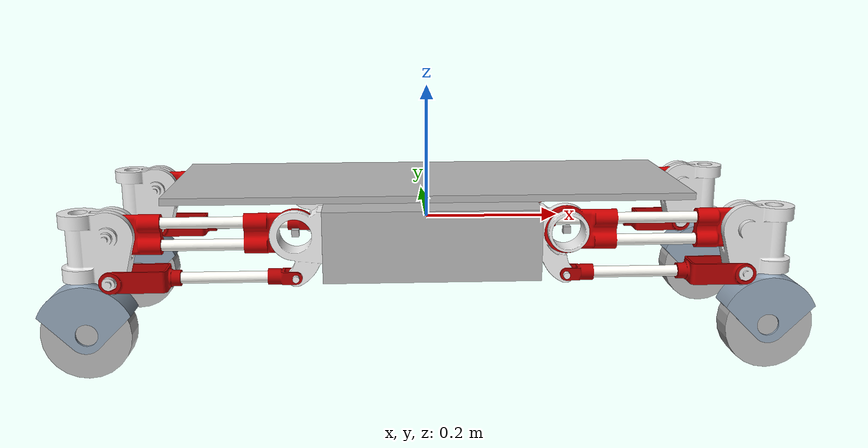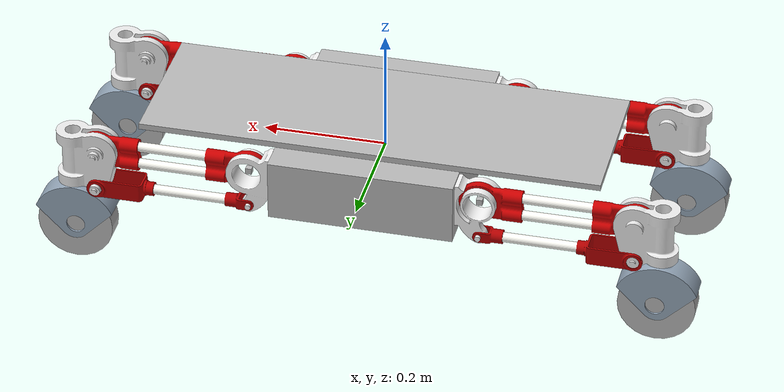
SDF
<sdf version='1.7'>
  <model name='pandora'>
    <joint name='world__base_link' type='fixed'>
      <pose relative_to='__model__'>0 0 0 0 -0 0</pose>
      <parent>world</parent>
      <child>base_link</child>
    </joint>
    <link name='base_link'>
      <pose relative_to='world__base_link'>0 0 0 0 -0 0</pose>
      <inertial>
        <pose>0 0 0.006195 0 -0 0</pose>
        <mass>39.841</mass>
        <inertia>
          <ixx>0.480025</ixx>
          <ixy>0</ixy>
          <ixz>5.15816e-19</ixz>
          <iyy>0.675118</iyy>
          <iyz>-8.67362e-19</iyz>
          <izz>1.06847</izz>
        </inertia>
      </inertial>
      <collision name='base_link_collision'>
        <pose>0 0 0 0 -0 0</pose>
        <geometry>
          <box>
            <size>0.3 0.35 0.1</size>
          </box>
        </geometry>
      </collision>
      <collision name='base_link_fixed_joint_lump__frame_1_collision_1'>
        <pose>0.1875 -0.146719 -0.006 1.5708 -0 0</pose>
        <geometry>
          <box>
            <size>0.075 0.10625 0.016563</size>
          </box>
        </geometry>
      </collision>
      <collision name='base_link_fixed_joint_lump__pin_1_collision_2'>
        <pose>0.1875 -0.146719 0.015125 1.5708 -0 0</pose>
        <geometry>
          <box>
            <size>0.01 0.01 0.01</size>
          </box>
        </geometry>
      </collision>
      <collision name='base_link_fixed_joint_lump__frame_2_collision_3'>
        <pose>0.1875 0.146719 -0.006 1.5708 -0 0</pose>
        <geometry>
          <box>
            <size>0.075 0.10625 0.016563</size>
          </box>
        </geometry>
      </collision>
      <collision name='base_link_fixed_joint_lump__pin_2_collision_4'>
        <pose>0.1875 0.146719 0.015125 1.5708 -0 0</pose>
        <geometry>
          <box>
            <size>0.01 0.01 0.01</size>
          </box>
        </geometry>
      </collision>
      <collision name='base_link_fixed_joint_lump__frame_3_collision_5'>
        <pose>-0.1875 0.146719 -0.006 1.5708 0 3.14159</pose>
        <geometry>
          <box>
            <size>0.075 0.10625 0.016563</size>
          </box>
        </geometry>
      </collision>
      <collision name='base_link_fixed_joint_lump__pin_3_collision_6'>
        <pose>-0.1875 0.146719 0.015125 1.5708 0 3.14159</pose>
        <geometry>
          <box>
            <size>0.01 0.01 0.01</size>
          </box>
        </geometry>
      </collision>
      <collision name='base_link_fixed_joint_lump__frame_4_collision_7'>
        <pose>-0.1875 -0.146719 -0.006 1.5708 0 3.14159</pose>
        <geometry>
          <box>
            <size>0.075 0.10625 0.016563</size>
          </box>
        </geometry>
      </collision>
      <collision name='base_link_fixed_joint_lump__pin_4_collision_8'>
        <pose>-0.1875 -0.146719 0.015125 1.5708 0 3.14159</pose>
        <geometry>
          <box>
            <size>0.01 0.01 0.01</size>
          </box>
        </geometry>
      </collision>
      <collision name='base_link_fixed_joint_lump__base_collision_9'>
        <pose>0 0 0.055 0 -0 0</pose>
        <geometry>
          <box>
            <size>0.75 0.25 0.01</size>
          </box>
        </geometry>
      </collision>
      <collision name='base_link_fixed_joint_lump__imu_link_collision_10'>
        <pose>0 0 0 0 -0 0</pose>
        <geometry>
          <box>
            <size>0.001 0.001 0.001</size>
          </box>
        </geometry>
        <surface>
          <contact>
            <ode/>
          </contact>
          <friction>
            <ode/>
          </friction>
        </surface>
      </collision>
      <visual name='base_link_visual'>
        <pose>0 0 0 0 -0 0</pose>
        <geometry>
          <box>
            <size>0.3 0.35 0.1</size>
          </box>
        </geometry>
      </visual>
      <visual name='base_link_fixed_joint_lump__frame_1_visual_1'>
        <pose>0.1875 -0.146719 -0.006 -1.5708 -0 3.14159</pose>
        <geometry>
          <mesh>
            <scale>0.625 0.625 0.625</scale>
            <uri>model://pandora_description/meshes/frame.dae</uri>
          </mesh>
        </geometry>
      </visual>
      <visual name='base_link_fixed_joint_lump__pin_1_visual_2'>
        <pose>0.1875 -0.146719 0.015125 1.5708 -0 0</pose>
        <geometry>
          <box>
            <size>0.01 0.01 0.01</size>
          </box>
        </geometry>
      </visual>
      <visual name='base_link_fixed_joint_lump__frame_2_visual_3'>
        <pose>0.1875 0.146719 -0.006 -1.5708 -0 3.14159</pose>
        <geometry>
          <mesh>
            <scale>0.625 0.625 0.625</scale>
            <uri>model://pandora_description/meshes/frame.dae</uri>
          </mesh>
        </geometry>
      </visual>
      <visual name='base_link_fixed_joint_lump__pin_2_visual_4'>
        <pose>0.1875 0.146719 0.015125 1.5708 -0 0</pose>
        <geometry>
          <box>
            <size>0.01 0.01 0.01</size>
          </box>
        </geometry>
      </visual>
      <visual name='base_link_fixed_joint_lump__frame_3_visual_5'>
        <pose>-0.1875 0.146719 -0.006 -1.5708 -0 0</pose>
        <geometry>
          <mesh>
            <scale>0.625 0.625 0.625</scale>
            <uri>model://pandora_description/meshes/frame.dae</uri>
          </mesh>
        </geometry>
      </visual>
      <visual name='base_link_fixed_joint_lump__pin_3_visual_6'>
        <pose>-0.1875 0.146719 0.015125 1.5708 0 3.14159</pose>
        <geometry>
          <box>
            <size>0.01 0.01 0.01</size>
          </box>
        </geometry>
      </visual>
      <visual name='base_link_fixed_joint_lump__frame_4_visual_7'>
        <pose>-0.1875 -0.146719 -0.006 -1.5708 -0 0</pose>
        <geometry>
          <mesh>
            <scale>0.625 0.625 0.625</scale>
            <uri>model://pandora_description/meshes/frame.dae</uri>
          </mesh>
        </geometry>
      </visual>
      <visual name='base_link_fixed_joint_lump__pin_4_visual_8'>
        <pose>-0.1875 -0.146719 0.015125 1.5708 0 3.14159</pose>
        <geometry>
          <box>
            <size>0.01 0.01 0.01</size>
          </box>
        </geometry>
      </visual>
      <visual name='base_link_fixed_joint_lump__base_visual_9'>
        <pose>0 0 0.055 0 -0 0</pose>
        <geometry>
          <box>
            <size>0.75 0.25 0.01</size>
          </box>
        </geometry>
      </visual>
      <visual name='base_link_fixed_joint_lump__imu_link_visual_10'>
        <pose>0 0 0 0 -0 0</pose>
        <geometry>
          <box>
            <size>0.001 0.001 0.001</size>
          </box>
        </geometry>
      </visual>
      <gravity>1</gravity>
      <sensor name='imu_sensor' type='imu'>
        <always_on>1</always_on>
        <update_rate>25</update_rate>
        <visualize>1</visualize>
        <topic>__default_topic__</topic>
        <plugin name='imu_plugin' filename='libgazebo_ros_imu_sensor.so'>
          <topicName>imu</topicName>
          <bodyName>imu_link</bodyName>
          <updateRateHZ>25.0</updateRateHZ>
          <gaussianNoise>0.0</gaussianNoise>
          <xyzOffset>0 0 0</xyzOffset>
          <rpyOffset>0 0 0</rpyOffset>
          <frameName>imu_link</frameName>
          <initialOrientationAsReference>0</initialOrientationAsReference>
        </plugin>
        <pose>0 0 0 0 -0 0</pose>
      </sensor>
    </link>
    <joint name='pin__crank_1' type='revolute'>
      <pose relative_to='base_link'>0.1875 -0.146719 0.015125 1.5708 -0 0</pose>
      <parent>base_link</parent>
      <child>crank_1</child>
      <axis>
        <xyz>0 0 1</xyz>
        <limit>
          <lower>-0.785398</lower>
          <upper>0.785398</upper>
          <effort>1000</effort>
          <velocity>0.5</velocity>
        </limit>
        <dynamics>
          <spring_reference>0</spring_reference>
          <spring_stiffness>0</spring_stiffness>
        </dynamics>
      </axis>
    </joint>
    <link name='crank_1'>
      <pose relative_to='pin__crank_1'>0 0 0 0 -0 0</pose>
      <inertial>
        <pose>0.125 0 0 0 -0 0</pose>
        <mass>0.072</mass>
        <inertia>
          <ixx>1.23779e-05</ixx>
          <ixy>0</ixy>
          <ixz>0</ixz>
          <iyy>0.000475172</iyy>
          <iyz>0</iyz>
          <izz>0.000486424</izz>
        </inertia>
      </inertial>
      <collision name='crank_1_collision'>
        <pose>0.125 0 0 0 -0 0</pose>
        <geometry>
          <box>
            <size>0.28125 0.044375 0.009688</size>
          </box>
        </geometry>
      </collision>
      <visual name='crank_1_visual'>
        <pose>0.016 0 0 0 -0 0</pose>
        <geometry>
          <mesh>
            <scale>0.625 0.625 0.625</scale>
            <uri>model://pandora_description/meshes/crank.dae</uri>
          </mesh>
        </geometry>
      </visual>
    </link>
    <joint name='crank__coupler_1' type='revolute'>
      <pose relative_to='crank_1'>0.25 0 -0.003125 0 0 -1.5708</pose>
      <parent>crank_1</parent>
      <child>coupler_1</child>
      <axis>
        <xyz>0 0 1</xyz>
        <limit>
          <lower>-3.14159</lower>
          <upper>3.14159</upper>
          <effort>1000</effort>
          <velocity>0.5</velocity>
        </limit>
        <dynamics>
          <spring_reference>0</spring_reference>
          <spring_stiffness>0</spring_stiffness>
        </dynamics>
      </axis>
    </joint>
    <link name='coupler_1'>
      <pose relative_to='crank__coupler_1'>0 0 0 0 -0 0</pose>
      <inertial>
        <pose>0.102822 0.029821 0.002429 0 -0 0</pose>
        <mass>0.62875</mass>
        <inertia>
          <ixx>0.000670227</ixx>
          <ixy>-0.00031806</ixy>
          <ixz>-0.000105089</ixz>
          <iyy>0.00158952</iyy>
          <iyz>-3.81483e-05</iyz>
          <izz>0.00219655</izz>
        </inertia>
      </inertial>
      <collision name='coupler_1_collision'>
        <pose>0.053125 0 -0.003531 0 -0 0</pose>
        <geometry>
          <box>
            <size>0.10625 0.08514 0.007063</size>
          </box>
        </geometry>
      </collision>
      <collision name='coupler_1_fixed_joint_lump__fork_1_collision_1'>
        <pose>0.062125 0.04 0 0 -1.5708 0</pose>
        <geometry>
          <cylinder>
            <length>0.014644</length>
            <radius>0.01875</radius>
          </cylinder>
        </geometry>
      </collision>
      <collision name='coupler_1_fixed_joint_lump__wheel_1_collision_2'>
        <pose>0.139625 0.04 0.006 0 -0 0</pose>
        <geometry>
          <cylinder>
            <length>0.03625</length>
            <radius>0.0625</radius>
          </cylinder>
        </geometry>
        <surface>
          <friction>
            <ode>
              <mu>1</mu>
              <mu2>1</mu2>
            </ode>
            <bullet>
              <friction>0.5</friction>
              <friction2>0.5</friction2>
            </bullet>
          </friction>
          <contact>
            <ode>
              <soft_erp>0.5</soft_erp>
              <max_vel>0.0001</max_vel>
              <min_depth>0.005</min_depth>
              <kp>2.1e+15</kp>
              <kd>1</kd>
            </ode>
            <bullet>
              <soft_cfm>0.007</soft_cfm>
              <soft_erp>0.25</soft_erp>
              <kp>1e+06</kp>
              <kd>5</kd>
              <split_impulse>1</split_impulse>
              <split_impulse_penetration_threshold>-0.01</split_impulse_penetration_threshold>
            </bullet>
          </contact>
        </surface>
      </collision>
      <visual name='coupler_1_visual'>
        <pose>0.031125 -0.0025 0.003531 0 0 -1.5708</pose>
        <geometry>
          <mesh>
            <scale>0.625 0.625 0.625</scale>
            <uri>model://pandora_description/meshes/coupler.dae</uri>
          </mesh>
        </geometry>
      </visual>
      <visual name='coupler_1_fixed_joint_lump__fork_1_visual_1'>
        <pose>0.137125 0.04 0.005 -3.14159 -0 1.5708</pose>
        <geometry>
          <mesh>
            <scale>0.625 0.625 0.625</scale>
            <uri>model://pandora_description/meshes/fork.dae</uri>
          </mesh>
        </geometry>
      </visual>
      <visual name='coupler_1_fixed_joint_lump__wheel_1_visual_2'>
        <pose>0.139625 0.04 0.006 0 -0 0</pose>
        <geometry>
          <cylinder>
            <length>0.03625</length>
            <radius>0.0625</radius>
          </cylinder>
        </geometry>
      </visual>
      <sensor name='wheel_1_contact_sensor' type='contact'>
        <always_on>1</always_on>
        <update_rate>25</update_rate>
        <contact>
          <collision>fork_1_collision_wheel_1</collision>
          <topic>__default_topic__</topic>
        </contact>
        <plugin name='wheel_1_bumper' filename='libgazebo_ros_bumper.so'>
          <bumperTopicName>pandora/contacts_1</bumperTopicName>
          <frameName>wheel_1</frameName>
        </plugin>
        <pose>0.139625 0.04 0.006 0 -0 0</pose>
      </sensor>
    </link>
    <joint name='frame__rocker_1' type='revolute'>
      <pose relative_to='base_link'>0.1875 -0.146719 -0.047125 1.5708 -0 0</pose>
      <parent>base_link</parent>
      <child>rocker_1</child>
      <axis>
        <xyz>0 0 1</xyz>
        <limit>
          <lower>-3.14159</lower>
          <upper>3.14159</upper>
          <effort>1000</effort>
          <velocity>0.5</velocity>
        </limit>
        <dynamics>
          <spring_reference>0</spring_reference>
          <spring_stiffness>0</spring_stiffness>
        </dynamics>
      </axis>
    </joint>
    <link name='rocker_1'>
      <pose relative_to='frame__rocker_1'>0 0 0 0 -0 0</pose>
      <inertial>
        <pose>0.125 0 0 0 -0 0</pose>
        <mass>0.05</mass>
        <inertia>
          <ixx>5.53792e-07</ixx>
          <ixy>0</ixy>
          <ixz>0</ixz>
          <iyy>0.000315267</iyy>
          <iyz>0</iyz>
          <izz>0.000315495</izz>
        </inertia>
      </inertial>
      <collision name='rocker_1_collision'>
        <pose>0.125 0 0 0 -0 0</pose>
        <geometry>
          <box>
            <size>0.275 0.009688 0.00625</size>
          </box>
        </geometry>
      </collision>
      <visual name='rocker_1_visual'>
        <pose>0.0955 0 0 0 -0 3.14159</pose>
        <geometry>
          <mesh>
            <scale>0.625 0.625 0.625</scale>
            <uri>model://pandora_description/meshes/rocker.dae</uri>
          </mesh>
        </geometry>
      </visual>
    </link>
    <joint name='pin__crank_2' type='revolute'>
      <pose relative_to='base_link'>0.1875 0.146719 0.015125 1.5708 -0 0</pose>
      <parent>base_link</parent>
      <child>crank_2</child>
      <axis>
        <xyz>0 0 1</xyz>
        <limit>
          <lower>-0.785398</lower>
          <upper>0.785398</upper>
          <effort>1000</effort>
          <velocity>0.5</velocity>
        </limit>
        <dynamics>
          <spring_reference>0</spring_reference>
          <spring_stiffness>0</spring_stiffness>
        </dynamics>
      </axis>
    </joint>
    <link name='crank_2'>
      <pose relative_to='pin__crank_2'>0 0 0 0 -0 0</pose>
      <inertial>
        <pose>0.125 0 0 0 -0 0</pose>
        <mass>0.072</mass>
        <inertia>
          <ixx>1.23779e-05</ixx>
          <ixy>0</ixy>
          <ixz>0</ixz>
          <iyy>0.000475172</iyy>
          <iyz>0</iyz>
          <izz>0.000486424</izz>
        </inertia>
      </inertial>
      <collision name='crank_2_collision'>
        <pose>0.125 0 0 0 -0 0</pose>
        <geometry>
          <box>
            <size>0.28125 0.044375 0.009688</size>
          </box>
        </geometry>
      </collision>
      <visual name='crank_2_visual'>
        <pose>0.016 0 0 0 -0 0</pose>
        <geometry>
          <mesh>
            <scale>0.625 0.625 0.625</scale>
            <uri>model://pandora_description/meshes/crank.dae</uri>
          </mesh>
        </geometry>
      </visual>
    </link>
    <joint name='crank__coupler_2' type='revolute'>
      <pose relative_to='crank_2'>0.25 0 -0.003125 0 0 -1.5708</pose>
      <parent>crank_2</parent>
      <child>coupler_2</child>
      <axis>
        <xyz>0 0 1</xyz>
        <limit>
          <lower>-3.14159</lower>
          <upper>3.14159</upper>
          <effort>1000</effort>
          <velocity>0.5</velocity>
        </limit>
        <dynamics>
          <spring_reference>0</spring_reference>
          <spring_stiffness>0</spring_stiffness>
        </dynamics>
      </axis>
    </joint>
    <link name='coupler_2'>
      <pose relative_to='crank__coupler_2'>0 0 0 0 -0 0</pose>
      <inertial>
        <pose>0.102822 0.029821 0.002429 0 -0 0</pose>
        <mass>0.62875</mass>
        <inertia>
          <ixx>0.000670227</ixx>
          <ixy>-0.00031806</ixy>
          <ixz>-0.000105089</ixz>
          <iyy>0.00158952</iyy>
          <iyz>-3.81483e-05</iyz>
          <izz>0.00219655</izz>
        </inertia>
      </inertial>
      <collision name='coupler_2_collision'>
        <pose>0.053125 0 -0.003531 0 -0 0</pose>
        <geometry>
          <box>
            <size>0.10625 0.08514 0.007063</size>
          </box>
        </geometry>
      </collision>
      <collision name='coupler_2_fixed_joint_lump__fork_2_collision_1'>
        <pose>0.062125 0.04 0 0 -1.5708 0</pose>
        <geometry>
          <cylinder>
            <length>0.014644</length>
            <radius>0.01875</radius>
          </cylinder>
        </geometry>
      </collision>
      <collision name='coupler_2_fixed_joint_lump__wheel_2_collision_2'>
        <pose>0.139625 0.04 0.006 0 -0 0</pose>
        <geometry>
          <cylinder>
            <length>0.03625</length>
            <radius>0.0625</radius>
          </cylinder>
        </geometry>
        <surface>
          <friction>
            <ode>
              <mu>1</mu>
              <mu2>1</mu2>
            </ode>
            <bullet>
              <friction>0.5</friction>
              <friction2>0.5</friction2>
            </bullet>
          </friction>
          <contact>
            <ode>
              <soft_erp>0.5</soft_erp>
              <max_vel>0.0001</max_vel>
              <min_depth>0.005</min_depth>
              <kp>2.1e+15</kp>
              <kd>1</kd>
            </ode>
            <bullet>
              <soft_cfm>0.007</soft_cfm>
              <soft_erp>0.25</soft_erp>
              <kp>1e+06</kp>
              <kd>5</kd>
              <split_impulse>1</split_impulse>
              <split_impulse_penetration_threshold>-0.01</split_impulse_penetration_threshold>
            </bullet>
          </contact>
        </surface>
      </collision>
      <visual name='coupler_2_visual'>
        <pose>0.031125 -0.0025 0.003531 0 0 -1.5708</pose>
        <geometry>
          <mesh>
            <scale>0.625 0.625 0.625</scale>
            <uri>model://pandora_description/meshes/coupler.dae</uri>
          </mesh>
        </geometry>
      </visual>
      <visual name='coupler_2_fixed_joint_lump__fork_2_visual_1'>
        <pose>0.137125 0.04 0.005 -3.14159 -0 1.5708</pose>
        <geometry>
          <mesh>
            <scale>0.625 0.625 0.625</scale>
            <uri>model://pandora_description/meshes/fork.dae</uri>
          </mesh>
        </geometry>
      </visual>
      <visual name='coupler_2_fixed_joint_lump__wheel_2_visual_2'>
        <pose>0.139625 0.04 0.006 0 -0 0</pose>
        <geometry>
          <cylinder>
            <length>0.03625</length>
            <radius>0.0625</radius>
          </cylinder>
        </geometry>
      </visual>
      <sensor name='wheel_2_contact_sensor' type='contact'>
        <always_on>1</always_on>
        <update_rate>25</update_rate>
        <contact>
          <collision>fork_2_collision_wheel_2</collision>
          <topic>__default_topic__</topic>
        </contact>
        <plugin name='wheel_2_bumper' filename='libgazebo_ros_bumper.so'>
          <bumperTopicName>pandora/contacts_2</bumperTopicName>
          <frameName>wheel_2</frameName>
        </plugin>
        <pose>0.139625 0.04 0.006 0 -0 0</pose>
      </sensor>
    </link>
    <joint name='frame__rocker_2' type='revolute'>
      <pose relative_to='base_link'>0.1875 0.146719 -0.047125 1.5708 -0 0</pose>
      <parent>base_link</parent>
      <child>rocker_2</child>
      <axis>
        <xyz>0 0 1</xyz>
        <limit>
          <lower>-3.14159</lower>
          <upper>3.14159</upper>
          <effort>1000</effort>
          <velocity>0.5</velocity>
        </limit>
        <dynamics>
          <spring_reference>0</spring_reference>
          <spring_stiffness>0</spring_stiffness>
        </dynamics>
      </axis>
    </joint>
    <link name='rocker_2'>
      <pose relative_to='frame__rocker_2'>0 0 0 0 -0 0</pose>
      <inertial>
        <pose>0.125 0 0 0 -0 0</pose>
        <mass>0.05</mass>
        <inertia>
          <ixx>5.53792e-07</ixx>
          <ixy>0</ixy>
          <ixz>0</ixz>
          <iyy>0.000315267</iyy>
          <iyz>0</iyz>
          <izz>0.000315495</izz>
        </inertia>
      </inertial>
      <collision name='rocker_2_collision'>
        <pose>0.125 0 0 0 -0 0</pose>
        <geometry>
          <box>
            <size>0.275 0.009688 0.00625</size>
          </box>
        </geometry>
      </collision>
      <visual name='rocker_2_visual'>
        <pose>0.0955 0 0 0 -0 3.14159</pose>
        <geometry>
          <mesh>
            <scale>0.625 0.625 0.625</scale>
            <uri>model://pandora_description/meshes/rocker.dae</uri>
          </mesh>
        </geometry>
      </visual>
    </link>
    <joint name='pin__crank_3' type='revolute'>
      <pose relative_to='base_link'>-0.1875 0.146719 0.015125 1.5708 0 3.14159</pose>
      <parent>base_link</parent>
      <child>crank_3</child>
      <axis>
        <xyz>0 0 1</xyz>
        <limit>
          <lower>-0.785398</lower>
          <upper>0.785398</upper>
          <effort>1000</effort>
          <velocity>0.5</velocity>
        </limit>
        <dynamics>
          <spring_reference>0</spring_reference>
          <spring_stiffness>0</spring_stiffness>
        </dynamics>
      </axis>
    </joint>
    <link name='crank_3'>
      <pose relative_to='pin__crank_3'>0 0 0 0 -0 0</pose>
      <inertial>
        <pose>0.125 0 0 0 -0 0</pose>
        <mass>0.072</mass>
        <inertia>
          <ixx>1.23779e-05</ixx>
          <ixy>0</ixy>
          <ixz>0</ixz>
          <iyy>0.000475172</iyy>
          <iyz>0</iyz>
          <izz>0.000486424</izz>
        </inertia>
      </inertial>
      <collision name='crank_3_collision'>
        <pose>0.125 0 0 0 -0 0</pose>
        <geometry>
          <box>
            <size>0.28125 0.044375 0.009688</size>
          </box>
        </geometry>
      </collision>
      <visual name='crank_3_visual'>
        <pose>0.016 0 0 0 -0 0</pose>
        <geometry>
          <mesh>
            <scale>0.625 0.625 0.625</scale>
            <uri>model://pandora_description/meshes/crank.dae</uri>
          </mesh>
        </geometry>
      </visual>
    </link>
    <joint name='crank__coupler_3' type='revolute'>
      <pose relative_to='crank_3'>0.25 0 -0.003125 0 0 -1.5708</pose>
      <parent>crank_3</parent>
      <child>coupler_3</child>
      <axis>
        <xyz>0 0 1</xyz>
        <limit>
          <lower>-3.14159</lower>
          <upper>3.14159</upper>
          <effort>1000</effort>
          <velocity>0.5</velocity>
        </limit>
        <dynamics>
          <spring_reference>0</spring_reference>
          <spring_stiffness>0</spring_stiffness>
        </dynamics>
      </axis>
    </joint>
    <link name='coupler_3'>
      <pose relative_to='crank__coupler_3'>0 0 0 0 -0 0</pose>
      <inertial>
        <pose>0.102822 0.029821 0.002429 0 -0 0</pose>
        <mass>0.62875</mass>
        <inertia>
          <ixx>0.000670227</ixx>
          <ixy>-0.00031806</ixy>
          <ixz>-0.000105089</ixz>
          <iyy>0.00158952</iyy>
          <iyz>-3.81483e-05</iyz>
          <izz>0.00219655</izz>
        </inertia>
      </inertial>
      <collision name='coupler_3_collision'>
        <pose>0.053125 0 -0.003531 0 -0 0</pose>
        <geometry>
          <box>
            <size>0.10625 0.08514 0.007063</size>
          </box>
        </geometry>
      </collision>
      <collision name='coupler_3_fixed_joint_lump__fork_3_collision_1'>
        <pose>0.062125 0.04 0 0 -1.5708 0</pose>
        <geometry>
          <cylinder>
            <length>0.014644</length>
            <radius>0.01875</radius>
          </cylinder>
        </geometry>
      </collision>
      <collision name='coupler_3_fixed_joint_lump__wheel_3_collision_2'>
        <pose>0.139625 0.04 0.006 -3.14159 0 0</pose>
        <geometry>
          <cylinder>
            <length>0.03625</length>
            <radius>0.0625</radius>
          </cylinder>
        </geometry>
        <surface>
          <friction>
            <ode>
              <mu>1</mu>
              <mu2>1</mu2>
            </ode>
            <bullet>
              <friction>0.5</friction>
              <friction2>0.5</friction2>
            </bullet>
          </friction>
          <contact>
            <ode>
              <soft_erp>0.5</soft_erp>
              <max_vel>0.0001</max_vel>
              <min_depth>0.005</min_depth>
              <kp>2.1e+15</kp>
              <kd>1</kd>
            </ode>
            <bullet>
              <soft_cfm>0.007</soft_cfm>
              <soft_erp>0.25</soft_erp>
              <kp>1e+06</kp>
              <kd>5</kd>
              <split_impulse>1</split_impulse>
              <split_impulse_penetration_threshold>-0.01</split_impulse_penetration_threshold>
            </bullet>
          </contact>
        </surface>
      </collision>
      <visual name='coupler_3_visual'>
        <pose>0.031125 -0.0025 0.003531 0 0 -1.5708</pose>
        <geometry>
          <mesh>
            <scale>0.625 0.625 0.625</scale>
            <uri>model://pandora_description/meshes/coupler.dae</uri>
          </mesh>
        </geometry>
      </visual>
      <visual name='coupler_3_fixed_joint_lump__fork_3_visual_1'>
        <pose>0.137125 0.04 0.005 -3.14159 -0 1.5708</pose>
        <geometry>
          <mesh>
            <scale>0.625 0.625 0.625</scale>
            <uri>model://pandora_description/meshes/fork.dae</uri>
          </mesh>
        </geometry>
      </visual>
      <visual name='coupler_3_fixed_joint_lump__wheel_3_visual_2'>
        <pose>0.139625 0.04 0.006 -3.14159 0 0</pose>
        <geometry>
          <cylinder>
            <length>0.03625</length>
            <radius>0.0625</radius>
          </cylinder>
        </geometry>
      </visual>
      <sensor name='wheel_3_contact_sensor' type='contact'>
        <always_on>1</always_on>
        <update_rate>25</update_rate>
        <contact>
          <collision>fork_3_collision_wheel_3</collision>
          <topic>__default_topic__</topic>
        </contact>
        <plugin name='wheel_3_bumper' filename='libgazebo_ros_bumper.so'>
          <bumperTopicName>pandora/contacts_3</bumperTopicName>
          <frameName>wheel_3</frameName>
        </plugin>
        <pose>0.139625 0.04 0.006 -3.14159 0 0</pose>
      </sensor>
    </link>
    <joint name='frame__rocker_3' type='revolute'>
      <pose relative_to='base_link'>-0.1875 0.146719 -0.047125 1.5708 0 3.14159</pose>
      <parent>base_link</parent>
      <child>rocker_3</child>
      <axis>
        <xyz>0 0 1</xyz>
        <limit>
          <lower>-3.14159</lower>
          <upper>3.14159</upper>
          <effort>1000</effort>
          <velocity>0.5</velocity>
        </limit>
        <dynamics>
          <spring_reference>0</spring_reference>
          <spring_stiffness>0</spring_stiffness>
        </dynamics>
      </axis>
    </joint>
    <link name='rocker_3'>
      <pose relative_to='frame__rocker_3'>0 0 0 0 -0 0</pose>
      <inertial>
        <pose>0.125 0 0 0 -0 0</pose>
        <mass>0.05</mass>
        <inertia>
          <ixx>5.53792e-07</ixx>
          <ixy>0</ixy>
          <ixz>0</ixz>
          <iyy>0.000315267</iyy>
          <iyz>0</iyz>
          <izz>0.000315495</izz>
        </inertia>
      </inertial>
      <collision name='rocker_3_collision'>
        <pose>0.125 0 0 0 -0 0</pose>
        <geometry>
          <box>
            <size>0.275 0.009688 0.00625</size>
          </box>
        </geometry>
      </collision>
      <visual name='rocker_3_visual'>
        <pose>0.0955 0 0 0 -0 3.14159</pose>
        <geometry>
          <mesh>
            <scale>0.625 0.625 0.625</scale>
            <uri>model://pandora_description/meshes/rocker.dae</uri>
          </mesh>
        </geometry>
      </visual>
    </link>
    <joint name='pin__crank_4' type='revolute'>
      <pose relative_to='base_link'>-0.1875 -0.146719 0.015125 1.5708 0 3.14159</pose>
      <parent>base_link</parent>
      <child>crank_4</child>
      <axis>
        <xyz>0 0 1</xyz>
        <limit>
          <lower>-0.785398</lower>
          <upper>0.785398</upper>
          <effort>1000</effort>
          <velocity>0.5</velocity>
        </limit>
        <dynamics>
          <spring_reference>0</spring_reference>
          <spring_stiffness>0</spring_stiffness>
        </dynamics>
      </axis>
    </joint>
    <link name='crank_4'>
      <pose relative_to='pin__crank_4'>0 0 0 0 -0 0</pose>
      <inertial>
        <pose>0.125 0 0 0 -0 0</pose>
        <mass>0.072</mass>
        <inertia>
          <ixx>1.23779e-05</ixx>
          <ixy>0</ixy>
          <ixz>0</ixz>
          <iyy>0.000475172</iyy>
          <iyz>0</iyz>
          <izz>0.000486424</izz>
        </inertia>
      </inertial>
      <collision name='crank_4_collision'>
        <pose>0.125 0 0 0 -0 0</pose>
        <geometry>
          <box>
            <size>0.28125 0.044375 0.009688</size>
          </box>
        </geometry>
      </collision>
      <visual name='crank_4_visual'>
        <pose>0.016 0 0 0 -0 0</pose>
        <geometry>
          <mesh>
            <scale>0.625 0.625 0.625</scale>
            <uri>model://pandora_description/meshes/crank.dae</uri>
          </mesh>
        </geometry>
      </visual>
    </link>
    <joint name='crank__coupler_4' type='revolute'>
      <pose relative_to='crank_4'>0.25 0 -0.003125 0 0 -1.5708</pose>
      <parent>crank_4</parent>
      <child>coupler_4</child>
      <axis>
        <xyz>0 0 1</xyz>
        <limit>
          <lower>-3.14159</lower>
          <upper>3.14159</upper>
          <effort>1000</effort>
          <velocity>0.5</velocity>
        </limit>
        <dynamics>
          <spring_reference>0</spring_reference>
          <spring_stiffness>0</spring_stiffness>
        </dynamics>
      </axis>
    </joint>
    <link name='coupler_4'>
      <pose relative_to='crank__coupler_4'>0 0 0 0 -0 0</pose>
      <inertial>
        <pose>0.102822 0.029821 0.002429 0 -0 0</pose>
        <mass>0.62875</mass>
        <inertia>
          <ixx>0.000670227</ixx>
          <ixy>-0.00031806</ixy>
          <ixz>-0.000105089</ixz>
          <iyy>0.00158952</iyy>
          <iyz>-3.81483e-05</iyz>
          <izz>0.00219655</izz>
        </inertia>
      </inertial>
      <collision name='coupler_4_collision'>
        <pose>0.053125 0 -0.003531 0 -0 0</pose>
        <geometry>
          <box>
            <size>0.10625 0.08514 0.007063</size>
          </box>
        </geometry>
      </collision>
      <collision name='coupler_4_fixed_joint_lump__fork_4_collision_1'>
        <pose>0.062125 0.04 0 0 -1.5708 0</pose>
        <geometry>
          <cylinder>
            <length>0.014644</length>
            <radius>0.01875</radius>
          </cylinder>
        </geometry>
      </collision>
      <collision name='coupler_4_fixed_joint_lump__wheel_4_collision_2'>
        <pose>0.139625 0.04 0.006 -3.14159 0 0</pose>
        <geometry>
          <cylinder>
            <length>0.03625</length>
            <radius>0.0625</radius>
          </cylinder>
        </geometry>
        <surface>
          <friction>
            <ode>
              <mu>1</mu>
              <mu2>1</mu2>
            </ode>
            <bullet>
              <friction>0.5</friction>
              <friction2>0.5</friction2>
            </bullet>
          </friction>
          <contact>
            <ode>
              <soft_erp>0.5</soft_erp>
              <max_vel>0.0001</max_vel>
              <min_depth>0.005</min_depth>
              <kp>2.1e+15</kp>
              <kd>1</kd>
            </ode>
            <bullet>
              <soft_cfm>0.007</soft_cfm>
              <soft_erp>0.25</soft_erp>
              <kp>1e+06</kp>
              <kd>5</kd>
              <split_impulse>1</split_impulse>
              <split_impulse_penetration_threshold>-0.01</split_impulse_penetration_threshold>
            </bullet>
          </contact>
        </surface>
      </collision>
      <visual name='coupler_4_visual'>
        <pose>0.031125 -0.0025 0.003531 0 0 -1.5708</pose>
        <geometry>
          <mesh>
            <scale>0.625 0.625 0.625</scale>
            <uri>model://pandora_description/meshes/coupler.dae</uri>
          </mesh>
        </geometry>
      </visual>
      <visual name='coupler_4_fixed_joint_lump__fork_4_visual_1'>
        <pose>0.137125 0.04 0.005 -3.14159 -0 1.5708</pose>
        <geometry>
          <mesh>
            <scale>0.625 0.625 0.625</scale>
            <uri>model://pandora_description/meshes/fork.dae</uri>
          </mesh>
        </geometry>
      </visual>
      <visual name='coupler_4_fixed_joint_lump__wheel_4_visual_2'>
        <pose>0.139625 0.04 0.006 -3.14159 0 0</pose>
        <geometry>
          <cylinder>
            <length>0.03625</length>
            <radius>0.0625</radius>
          </cylinder>
        </geometry>
      </visual>
      <sensor name='wheel_4_contact_sensor' type='contact'>
        <always_on>1</always_on>
        <update_rate>25</update_rate>
        <contact>
          <collision>fork_4_collision_wheel_4</collision>
          <topic>__default_topic__</topic>
        </contact>
        <plugin name='wheel_4_bumper' filename='libgazebo_ros_bumper.so'>
          <bumperTopicName>pandora/contacts_4</bumperTopicName>
          <frameName>wheel_4</frameName>
        </plugin>
        <pose>0.139625 0.04 0.006 -3.14159 0 0</pose>
      </sensor>
    </link>
    <joint name='frame__rocker_4' type='revolute'>
      <pose relative_to='base_link'>-0.1875 -0.146719 -0.047125 1.5708 0 3.14159</pose>
      <parent>base_link</parent>
      <child>rocker_4</child>
      <axis>
        <xyz>0 0 1</xyz>
        <limit>
          <lower>-3.14159</lower>
          <upper>3.14159</upper>
          <effort>1000</effort>
          <velocity>0.5</velocity>
        </limit>
        <dynamics>
          <spring_reference>0</spring_reference>
          <spring_stiffness>0</spring_stiffness>
        </dynamics>
      </axis>
    </joint>
    <link name='rocker_4'>
      <pose relative_to='frame__rocker_4'>0 0 0 0 -0 0</pose>
      <inertial>
        <pose>0.125 0 0 0 -0 0</pose>
        <mass>0.05</mass>
        <inertia>
          <ixx>5.53792e-07</ixx>
          <ixy>0</ixy>
          <ixz>0</ixz>
          <iyy>0.000315267</iyy>
          <iyz>0</iyz>
          <izz>0.000315495</izz>
        </inertia>
      </inertial>
      <collision name='rocker_4_collision'>
        <pose>0.125 0 0 0 -0 0</pose>
        <geometry>
          <box>
            <size>0.275 0.009688 0.00625</size>
          </box>
        </geometry>
      </collision>
      <visual name='rocker_4_visual'>
        <pose>0.0955 0 0 0 -0 3.14159</pose>
        <geometry>
          <mesh>
            <scale>0.625 0.625 0.625</scale>
            <uri>model://pandora_description/meshes/rocker.dae</uri>
          </mesh>
        </geometry>
      </visual>
    </link>
    <plugin name='joint_state_publisher' filename='libgazebo_ros_joint_state_publisher.so'>
      <updateRate>25</updateRate>
      <jointName>pin__crank_1, crank__coupler_1, frame__rocker_1, pin__crank_2, crank__coupler_2, frame__rocker_2, pin__crank_3, crank__coupler_3, frame__rocker_3, pin__crank_4, crank__coupler_4, frame__rocker_4</jointName>
    </plugin>
    <plugin name='gazebo_ros_control' filename='libgazebo_ros_control.so'>
      <robotSimType>gazebo_ros_control/DefaultRobotHWSim</robotSimType>
    </plugin>
    <joint name='rocker__coupler_1' type='ball'>
      <parent>rocker_1</parent>
      <child>coupler_1</child>
      <pose>0.062125 0 0 0 -0 1.5708</pose>
    </joint>
    <joint name='rocker__coupler_2' type='ball'>
      <parent>rocker_2</parent>
      <child>coupler_2</child>
      <pose>0.062125 0 0 0 -0 1.5708</pose>
    </joint>
    <joint name='rocker__coupler_3' type='ball'>
      <parent>rocker_3</parent>
      <child>coupler_3</child>
      <pose>0.062125 0 0 0 -0 1.5708</pose>
    </joint>
    <static>0</static>
    <joint name='rocker__coupler_4' type='ball'>
      <parent>rocker_4</parent>
      <child>coupler_4</child>
      <pose>0.062125 0 0 0 -0 1.5708</pose>
    </joint>
  </model>
</sdf>
